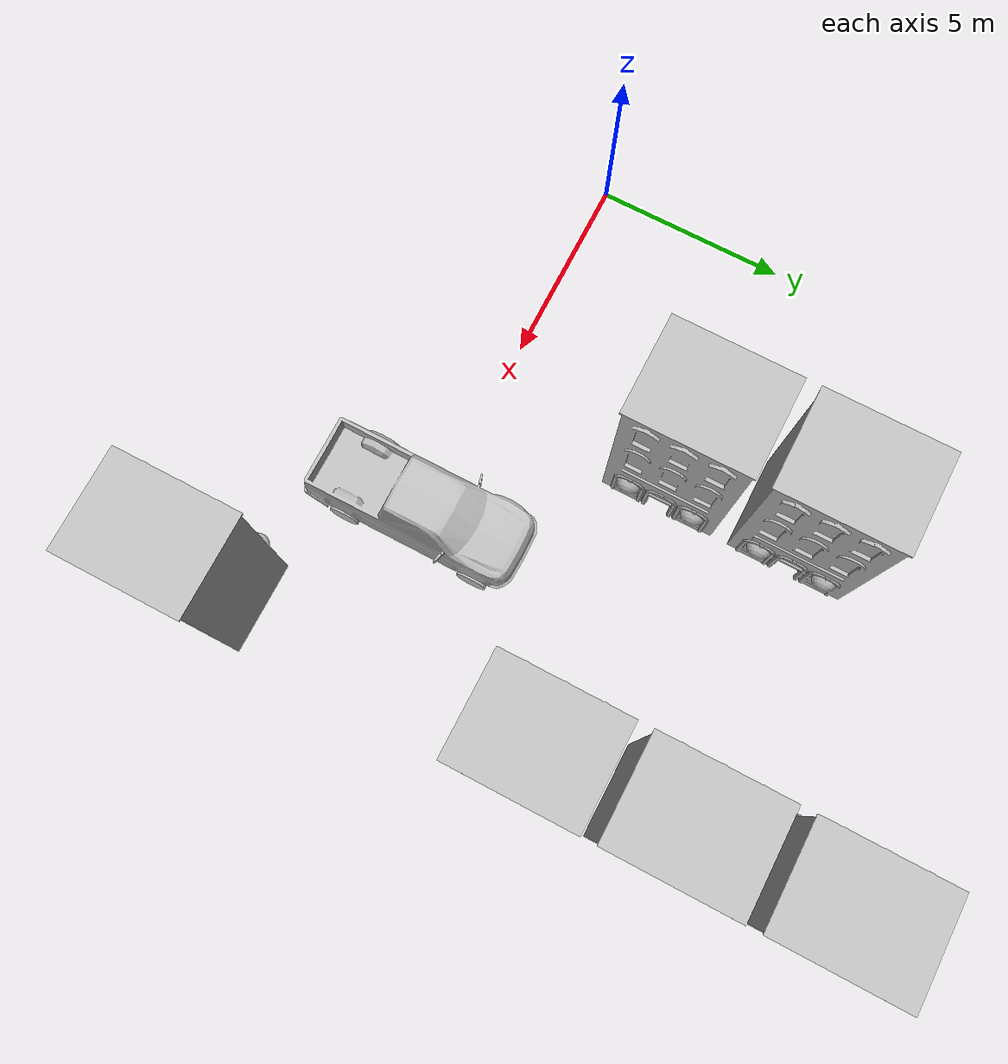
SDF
<sdf version="1.9">
 <world name="world_test_1">
  <physics name="1ms" type="ignore">
   <max_step_size>0.002</max_step_size>
   <real_time_factor>1.0</real_time_factor>
   <real_time_update_rate>0</real_time_update_rate>
  </physics>
  <plugin filename="gz-sim-physics-system" name="gz::sim::systems::Physics"/>
  <plugin filename="gz-sim-user-commands-system" name="gz::sim::systems::UserCommands"/>
  <plugin filename="gz-sim-scene-broadcaster-system" name="gz::sim::systems::SceneBroadcaster"/>
  <plugin filename="gz-sim-sensors-system" name="gz::sim::systems::Sensors">
   <render_engine>ogre2</render_engine>
  </plugin>
  <plugin filename="gz-sim-imu-system" name="gz::sim::systems::Imu"/>
  <scene><ambient>1.0 1.0 1.0</ambient><background>0.8 0.8 0.8</background></scene>
  <light type="directional" name="sun">
   <pose>0 0 10 0 0 0</pose>
   <diffuse>0.8 0.8 0.8 1</diffuse>
   <specular>0.8 0.8 0.8 1</specular>
   <attenuation>
    <range>1000</range>
    <constant>0.9</constant>
    <linear>0.01</linear>
    <quadratic>0.001</quadratic>
   </attenuation>
   <direction>-0.5 0.1 -0.9</direction>
  </light>
  <include><uri>model://pickup</uri><pose degrees="true">10 0 0 0 0 90.0</pose></include>
  <include>
   <name>office</name>
   <uri>model://office_building</uri>
   <pose degrees="true">6 5 0 0 0 90.0</pose>
  </include>
  <include>
   <name>office_0</name>
   <uri>model://office_building</uri>
   <pose degrees="true">6 8.5 0 0 0 90.0</pose>
  </include>
  <include>
   <name>office_1</name>
   <uri>model://office_building</uri>
   <pose degrees="true">14 5 0 0 0 -90.0</pose>
  </include>
  <include>
   <name>office_2</name>
   <uri>model://office_building</uri>
   <pose degrees="true">14 8.5 0 0 0 -90.0</pose>
  </include>
  <include>
   <name>office_3</name>
   <uri>model://office_building</uri>
   <pose degrees="true">14 12 0 0 0 -90.0</pose>
  </include>
  <include>
   <name>office_4</name>
   <uri>model://office_building</uri>
   <pose degrees="true">14 -4 0 0 0 -90.0</pose>
  </include>
 </world>
</sdf>

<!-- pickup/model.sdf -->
<sdf version="1.6">
  <model name="pickup">
    <link name="base_link">
      <inertial>
        <pose>0 0 0 0 0 0</pose>
        <mass>2300.0</mass>
        <inertia>
          <ixx>54.0</ixx>
          <ixy>0</ixy>
          <ixz>0</ixz>
          <iyy>252.0</iyy>
          <iyz>0</iyz>
          <izz>252.0</izz>
        </inertia>
      </inertial>
      <collision name="collision">
        <pose>0 0 0 0 0 -1.57079632679</pose>
        <geometry>
          <mesh>
            <uri>model://pickup/meshes/pickup_no_wheels.dae</uri>
          </mesh>
        </geometry>
      </collision>
      <visual name="visual">
        <pose>0 0 0 0 0 -1.57079632679</pose>
        <geometry>
          <mesh>
            <uri>model://pickup/meshes/pickup_no_wheels.dae</uri>
          </mesh>
        </geometry>
      </visual>
    </link>

    <joint name="servo_c" type="revolute">
      <parent>base_link</parent>
      <child>FrontCenterWheelSteering</child>
      <pose relative_to="base_link">1.78 0 0.4 0 0 0</pose>
      <axis>
        <xyz>0 0 1</xyz>
        <limit>
          <lower>-1.57079</lower>
          <upper>1.57079</upper>
          <velocity>10.0</velocity>
          <effort>500.0</effort>
        </limit>
        <use_parent_model_frame>1</use_parent_model_frame>
      </axis>
    </joint>
    <link name="FrontCenterWheelSteering">
      <pose relative_to="servo_c">0 0 0 0 0 0</pose>
      <inertial>
        <mass>0.005</mass>
        <inertia>
          <ixx>0.0000018</ixx>
          <iyy>0.0000018</iyy>
          <izz>0.0000018</izz>
        </inertia>
      </inertial>
    </link>
    <joint name="FrontCenterWheelJoint" type="revolute">
      <parent>FrontCenterWheelSteering</parent>
      <child>FrontCenterWheel</child>
      <pose relative_to="servo_c" degrees="true">0 0 0 -90 0 0</pose>
      <axis>
        <xyz>0 1 0</xyz>
        <limit>
          <lower>-1.79769e+308</lower>
          <upper>1.79769e+308</upper>
          <velocity>50.0</velocity>
        </limit>
        <dynamics>
          <spring_reference>0</spring_reference>
          <spring_stiffness>0</spring_stiffness>
        </dynamics>
        <use_parent_model_frame>1</use_parent_model_frame>
      </axis>
    </joint>
    <link name="FrontCenterWheel">
      <pose relative_to="FrontCenterWheelJoint">0 0 0 0 0 0</pose>
      <inertial>
        <mass>.05</mass>
        <inertia>
          <ixx>0.00003331</ixx>
          <ixy>0</ixy>
          <ixz>0</ixz>
          <iyy>0.0000204</iyy>
          <iyz>0</iyz>
          <izz>0.0000204</izz>
        </inertia>
      </inertial>
      <gravity>true</gravity>
      <velocity_decay/>
      <collision name="FrontCenterWheelCollision">
        <pose relative_to="FrontCenterWheelJoint">0 0.0 0 0 0 0</pose>
        <geometry>
          <cylinder>
            <length>0.3</length>
            <radius>0.4</radius>
          </cylinder>
        </geometry>
        <surface>
          <contact>
            <ode>
              <max_vel>100.0</max_vel>
              <min_depth>0.001</min_depth>
            </ode>
          </contact>
          <friction>
            <ode>
              <mu>1.0</mu>
              <mu2>1.0</mu2>
              <fdir1>1 0 0</fdir1>
            </ode>
          </friction>
        </surface>
      </collision>
    </link>

    <joint name="servo_0" type="revolute">
      <parent>base_link</parent>
      <child>FrontLeftWheelSteering</child>
      <pose relative_to="base_link">1.78 0.95 0.4 0 0 0</pose>
      <axis>
        <xyz>0 0 1</xyz>
        <limit>
          <lower>-0.0</lower>
          <upper>0.0</upper>
          <velocity>0.0</velocity>
          <effort>0.0</effort>
        </limit>
        <use_parent_model_frame>1</use_parent_model_frame>
      </axis>
    </joint>
    <joint name="servo_1" type="revolute">
      <parent>base_link</parent>
      <child>FrontRightWheelSteering</child>
      <pose relative_to="base_link">1.78 -0.95 0.4 0 0 0</pose>
      <axis>
        <xyz>0 0 1</xyz>
        <limit>
          <lower>-0.0</lower>
          <upper>0.0</upper>
          <velocity>0.0</velocity>
          <effort>0.0</effort>
        </limit>
        <use_parent_model_frame>1</use_parent_model_frame>
      </axis>
    </joint>

    <link name="FrontLeftWheelSteering">
      <pose relative_to="servo_0">0 0 0 0 0 0</pose>
      <inertial>
        <mass>0.005</mass>
        <inertia>
          <ixx>0.0000018</ixx>
          <iyy>0.0000018</iyy>
          <izz>0.0000018</izz>
        </inertia>
      </inertial>
    </link>
    <link name="FrontRightWheelSteering">
      <pose relative_to="servo_1">0 0 0 0 0 0</pose>
      <inertial>
        <mass>0.005</mass>
        <inertia>
          <ixx>0.0000018</ixx>
          <iyy>0.0000018</iyy>
          <izz>0.0000018</izz>
        </inertia>
      </inertial>
    </link>

    <joint name="FrontLeftWheelJoint" type="revolute">
      <parent>FrontLeftWheelSteering</parent>
      <child>FrontLeftWheel</child>
      <pose relative_to="servo_0" degrees="true">0 0 0 -90 0 0</pose>
      <axis>
        <xyz>0 1 0</xyz>
        <limit>
          <lower>-1.79769e+308</lower>
          <upper>1.79769e+308</upper>
          <velocity>50.0</velocity>
        </limit>
        <dynamics>
          <spring_reference>0</spring_reference>
          <spring_stiffness>0</spring_stiffness>
        </dynamics>
        <use_parent_model_frame>1</use_parent_model_frame>
      </axis>
    </joint>
    <joint name="FrontRightWheelJoint" type="revolute">
      <parent>FrontRightWheelSteering</parent>
      <child>FrontRightWheel</child>
      <pose relative_to="servo_1" degrees="true">0 0 0 90 0 0</pose>
      <axis>
        <xyz>0 1 0</xyz>
        <limit>
          <lower>-1.79769e+308</lower>
          <upper>1.79769e+308</upper>
          <velocity>50.0</velocity>
        </limit>
        <dynamics>
          <spring_reference>0</spring_reference>
          <spring_stiffness>0</spring_stiffness>
        </dynamics>
        <use_parent_model_frame>1</use_parent_model_frame>
      </axis>
    </joint>

    <joint name="RearLeftWheelJoint" type="revolute">
      <parent>base_link</parent>
      <child>RearLeftWheel</child>
      <pose relative_to="base_link" degrees="true">-1.78 0.95 0.4 -90 0 0</pose>
      <axis>
        <xyz>0 1 0</xyz>
        <limit>
          <lower>-1.79769e+308</lower>
          <upper>1.79769e+308</upper>
          <velocity>50.0</velocity>
        </limit>
        <dynamics>
          <spring_reference>0</spring_reference>
          <spring_stiffness>0</spring_stiffness>
        </dynamics>
        <use_parent_model_frame>1</use_parent_model_frame>
      </axis>
    </joint>
    <joint name="RearRightWheelJoint" type="revolute">
      <parent>base_link</parent>
      <child>RearRightWheel</child>
      <pose relative_to="base_link" degrees="true">-1.78 -0.95 0.4 90 0 0</pose>
      <axis>
        <xyz>0 1 0</xyz>
        <limit>
          <lower>-1.79769e+308</lower>
          <upper>1.79769e+308</upper>
          <velocity>50.0</velocity>
        </limit>
        <dynamics>
          <spring_reference>0</spring_reference>
          <spring_stiffness>0</spring_stiffness>
        </dynamics>
        <use_parent_model_frame>1</use_parent_model_frame>
      </axis>
    </joint>

    <link name="FrontLeftWheel">
      <pose relative_to="FrontLeftWheelJoint">0 0 0 0 0 0</pose>
      <inertial>
        <mass>.05</mass>
        <inertia>
          <ixx>0.00003331</ixx>
          <ixy>0</ixy>
          <ixz>0</ixz>
          <iyy>0.0000204</iyy>
          <iyz>0</iyz>
          <izz>0.0000204</izz>
        </inertia>
      </inertial>
      <gravity>true</gravity>
      <velocity_decay/>
      <visual name="FrontLeftWheelVisual">
        <pose relative_to="FrontLeftWheelJoint">0 0.0 0 0 0 0</pose>
        <geometry>
          <cylinder>
            <length>0.3</length>
            <radius>0.4</radius>
          </cylinder>
        </geometry>
        <material>
          <ambient>0.8 0.8 0.8 1</ambient>
          <diffuse>0.8 0.8 0.8 1</diffuse>
          <specular>0 0 0 0</specular>
          <pbr>
            <metal>
              <albedo_map>materials/textures/tire4.jpg</albedo_map>
            </metal>
          </pbr>
        </material>
      </visual>
      <collision name="FrontLeftWheelCollision">
        <pose relative_to="FrontLeftWheelJoint">0 0.0 0 0 0 0</pose>
        <geometry>
          <cylinder>
            <length>0.3</length>
            <radius>0.4</radius>
          </cylinder>
        </geometry>
        <surface>
          <contact>
            <ode>
              <max_vel>100.0</max_vel>
              <min_depth>0.001</min_depth>
            </ode>
          </contact>
          <friction>
            <ode>
              <mu>1.0</mu>
              <mu2>1.0</mu2>
              <fdir1>1 0 0</fdir1>
            </ode>
          </friction>
        </surface>
      </collision>
    </link>

    <link name="FrontRightWheel">
      <pose relative_to="FrontRightWheelJoint">0 0 0 0 0 0</pose>
      <inertial>
        <mass>.05</mass>
        <inertia>
          <ixx>0.00003331</ixx>
          <ixy>0</ixy>
          <ixz>0</ixz>
          <iyy>0.0000204</iyy>
          <iyz>0</iyz>
          <izz>0.0000204</izz>
        </inertia>
      </inertial>
      <gravity>true</gravity>
      <velocity_decay/>
      <visual name="FrontRightWheelVisual">
        <pose relative_to="FrontRightWheelJoint">0 -0.0 0 0 0 0</pose>
        <geometry>
          <cylinder>
            <length>0.3</length>
            <radius>0.4</radius>
          </cylinder>
        </geometry>
        <material>
          <ambient>0.8 0.8 0.8 1</ambient>
          <diffuse>0.8 0.8 0.8 1</diffuse>
          <specular>0 0 0 0</specular>
          <pbr>
            <metal>
              <albedo_map>materials/textures/tire4.jpg</albedo_map>
            </metal>
          </pbr>
        </material>
      </visual>
      <collision name="FrontRightWheelCollision">
        <pose relative_to="FrontRightWheelJoint">0 -0.0 0 0 0 0</pose>
        <geometry>
          <cylinder>
            <length>0.3</length>
            <radius>0.4</radius>
          </cylinder>
        </geometry>
        <surface>
          <contact>
            <ode>
              <max_vel>100.0</max_vel>
              <min_depth>0.001</min_depth>
            </ode>
          </contact>
          <friction>
            <ode>
              <mu>1.0</mu>
              <mu2>1.0</mu2>
              <fdir1>1 0 0</fdir1>
            </ode>
          </friction>
        </surface>
      </collision>
    </link>

    <link name="RearLeftWheel">
      <pose relative_to="RearLeftWheelJoint">0 0 0 0 0 0</pose>
      <inertial>
        <mass>.05</mass>
        <inertia>
          <ixx>0.00003331</ixx>
          <ixy>0</ixy>
          <ixz>0</ixz>
          <iyy>0.0000204</iyy>
          <iyz>0</iyz>
          <izz>0.0000204</izz>
        </inertia>
      </inertial>
      <gravity>true</gravity>
      <velocity_decay/>
      <visual name="RearLeftWheelVisual">
        <pose relative_to="RearLeftWheelJoint">0 0.0 0 0 0 0</pose>
        <geometry>
          <cylinder>
            <length>0.3</length>
            <radius>0.4</radius>
          </cylinder>
        </geometry>
        <material>
          <ambient>0.8 0.8 0.8 1</ambient>
          <diffuse>0.8 0.8 0.8 1</diffuse>
          <specular>0 0 0 0</specular>
          <pbr>
            <metal>
              <albedo_map>materials/textures/tire4.jpg</albedo_map>
            </metal>
          </pbr>
        </material>
      </visual>
      <collision name="RearLeftWheelCollision">
        <pose relative_to="RearLeftWheelJoint">0 0.0 0 0 0 0</pose>
        <geometry>
          <cylinder>
            <length>0.3</length>
            <radius>0.4</radius>
          </cylinder>
        </geometry>
        <surface>
          <contact>
            <ode>
              <max_vel>100.0</max_vel>
              <min_depth>0.001</min_depth>
            </ode>
          </contact>
          <friction>
            <ode>
              <mu>1.0</mu>
              <mu2>1.0</mu2>
              <fdir1>1 0 0</fdir1>
            </ode>
          </friction>
        </surface>
      </collision>
    </link>

    <link name="RearRightWheel">
      <pose relative_to="RearRightWheelJoint">0 0 0 0 0 0</pose>
      <inertial>
        <mass>.05</mass>
        <inertia>
          <ixx>0.00003331</ixx>
          <ixy>0</ixy>
          <ixz>0</ixz>
          <iyy>0.0000204</iyy>
          <iyz>0</iyz>
          <izz>0.0000204</izz>
        </inertia>
      </inertial>
      <gravity>true</gravity>
      <velocity_decay/>
      <visual name="RearRightWheelVisual">
        <pose relative_to="RearRightWheelJoint">0 -0.0 0 0 0 0</pose>
        <geometry>
          <cylinder>
            <length>0.3</length>
            <radius>0.4</radius>
          </cylinder>
        </geometry>
        <material>
          <ambient>0.8 0.8 0.8 1</ambient>
          <diffuse>0.8 0.8 0.8 1</diffuse>
          <specular>0 0 0 0</specular>
          <pbr>
            <metal>
              <albedo_map>materials/textures/tire4.jpg</albedo_map>
            </metal>
          </pbr>
        </material>
      </visual>
      <collision name="RearRightWheelCollision">
        <pose relative_to="RearRightWheelJoint">0 -0.0 0 0 0 0</pose>
        <geometry>
          <cylinder>
            <length>0.3</length>
            <radius>0.4</radius>
          </cylinder>
        </geometry>
        <surface>
          <contact>
            <ode>
              <max_vel>100.0</max_vel>
              <min_depth>0.001</min_depth>
            </ode>
          </contact>
          <friction>
            <ode>
              <mu>1.0</mu>
              <mu2>1.0</mu2>
              <fdir1>1 0 0</fdir1>
            </ode>
          </friction>
        </surface>
      </collision>
    </link>

    <plugin filename="ackerman-controller" name="AckermanController">
      <left_joint>RearLeftWheelJoint</left_joint>
      <right_joint>RearRightWheelJoint</right_joint>
      <left_steering_joint>servo_c</left_steering_joint>
      <right_steering_joint>servo_c</right_steering_joint>
      <wheel_separation>1.9</wheel_separation>
      <kingpin_width>0.0</kingpin_width>
      <wheel_base>3.56</wheel_base>
      <steering_limit>0.785</steering_limit>
      <wheel_radius>0.4</wheel_radius>
      <min_velocity>-0.5</min_velocity>
      <max_velocity>0.5</max_velocity>
      <min_acceleration>-6</min_acceleration>
      <max_acceleration>4</max_acceleration>
      <steer_p_gain>100.0</steer_p_gain>
    </plugin>

    <plugin filename="drive-to-pose-controller" name="DriveToPoseController">
      <linear_p_gain>1.0</linear_p_gain>
      <angular_p_gain>10.0</angular_p_gain>
    </plugin>

  </model>
</sdf>

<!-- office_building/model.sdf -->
<sdf version="1.6">
  <model name="office_building">
    <pose>2.1 1.8 0.2 0 0 0</pose>
    <static>true</static>
    <link name="link">
      <collision name="collision">
        <pose>1.8 1.8 0.2 0 0 0</pose>
        <geometry>
          <box>
            <size>0.0006844012958 0.0005431646878 0.0013924872736</size>
          </box>
        </geometry>
      </collision>
      <visual name="visual">
        <geometry>
	        <mesh>
            <uri>model://office_building/meshes/office_building.dae</uri>
            <scale>0.444012958 0.4440646878 0.3924872736</scale>
          </mesh>
        </geometry>
      </visual>
    </link>
  </model>
</sdf>
